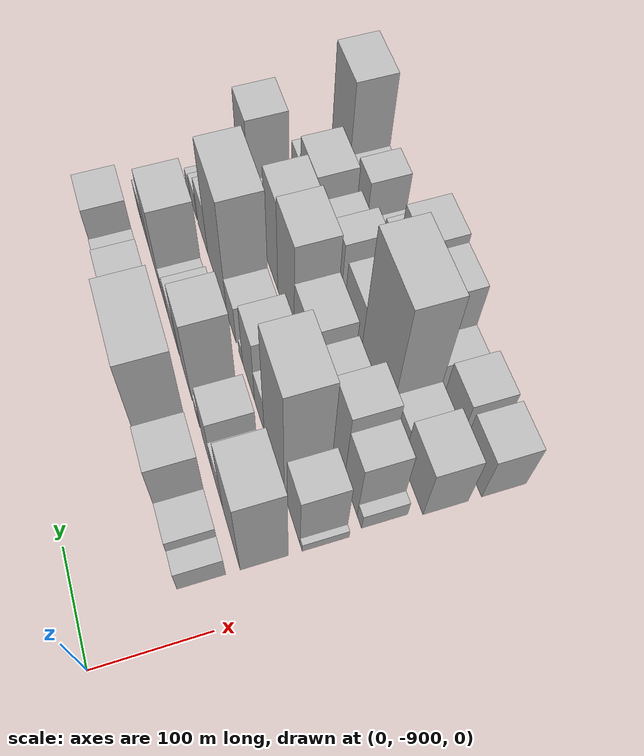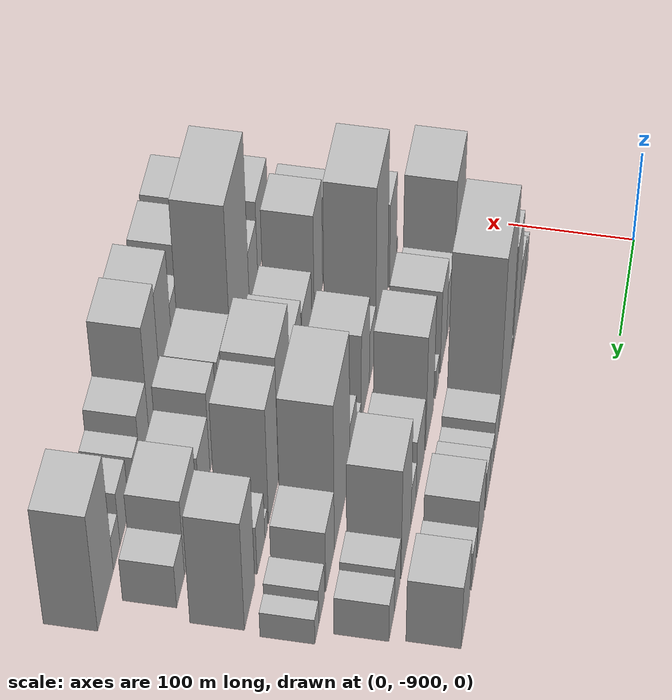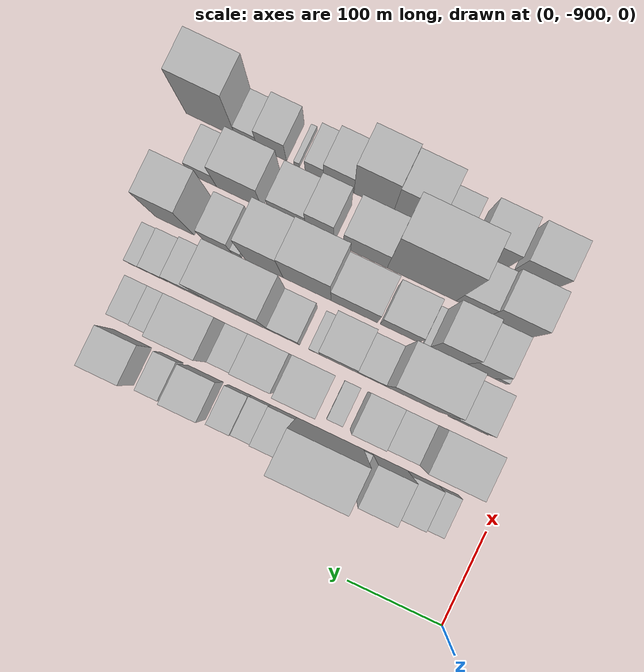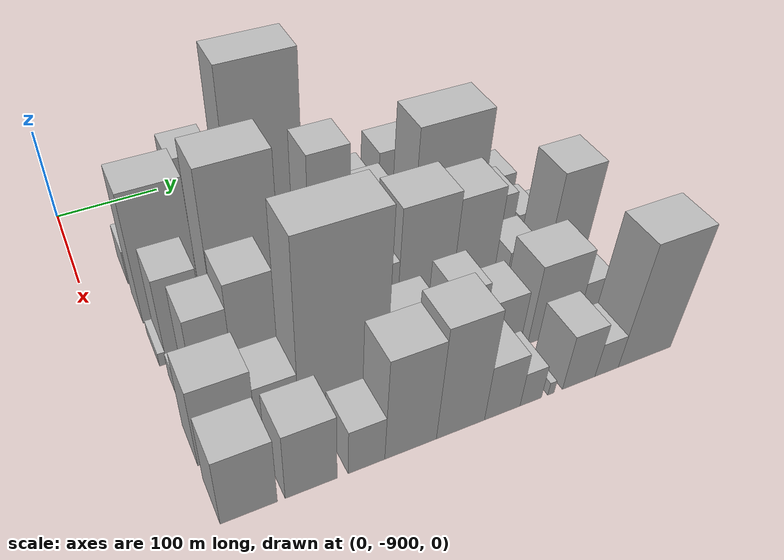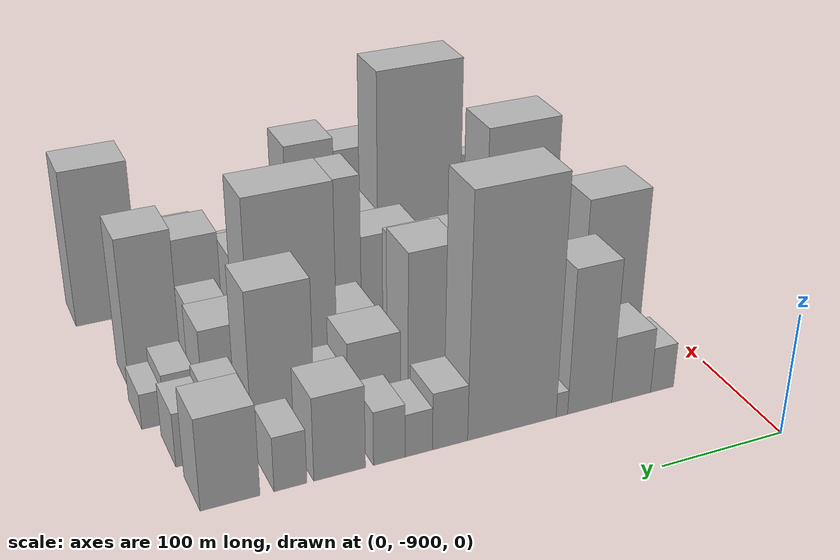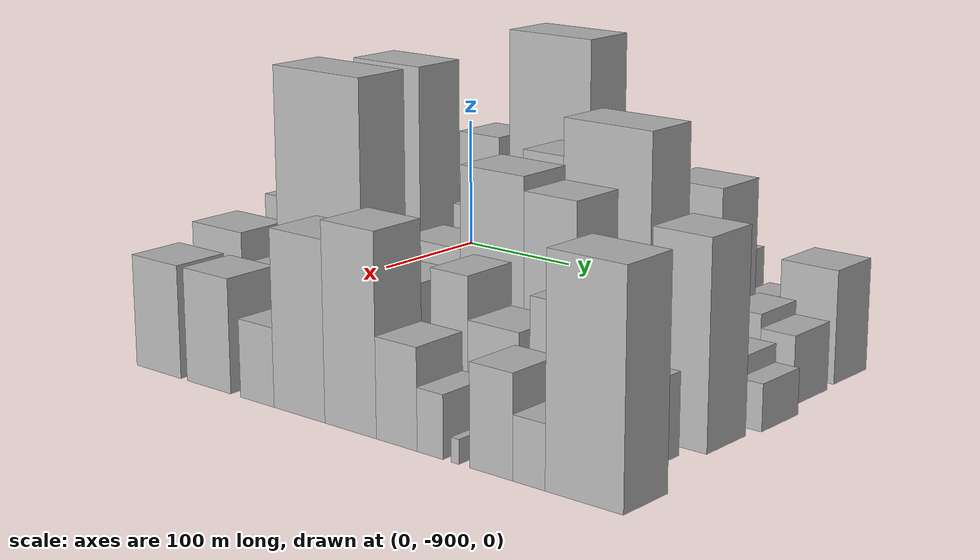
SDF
<sdf version="1.6">
 <world name="default">
  <model name="building_1">
   <static>1</static>
   <pose>100.0000 -849.9705 0 0.000000 0.000000 0.000000</pose>
   <link name="link">
    <pose>0 0 19.50 0 0 0</pose>
    <collision name="collision"><geometry><box><size>40.0000 20.0590 39.0000</size></box></geometry></collision>
    <visual name="visual">
     <cast_shadows>0</cast_shadows>
     <geometry><box><size>40.0000 20.0590 39.0000</size></box></geometry>
     <material>
      <script>
       <uri>model://HANNAS_wall/materials/scripts</uri>
       <uri>model://HANNAS_wall/materials/textures</uri>
       <name>vrc/HANNAS_wall</name>
      </script>
     </material>
    </visual>
   </link>
  </model>
  <model name="building_2">
   <static>1</static>
   <pose>100.0000 -823.1880 0 0.000000 0.000000 0.000000</pose>
   <link name="link">
    <pose>0 0 28.50 0 0 0</pose>
    <collision name="collision"><geometry><box><size>40.0000 33.5061 57.0000</size></box></geometry></collision>
    <visual name="visual">
     <cast_shadows>0</cast_shadows>
     <geometry><box><size>40.0000 33.5061 57.0000</size></box></geometry>
     <material>
      <script>
       <uri>model://HANNAS_wall/materials/scripts</uri>
       <uri>model://HANNAS_wall/materials/textures</uri>
       <name>vrc/HANNAS_wall</name>
      </script>
     </material>
    </visual>
   </link>
  </model>
  <model name="building_3">
   <static>1</static>
   <pose>100.0000 -787.8565 0 0.000000 0.000000 0.000000</pose>
   <link name="link">
    <pose>0 0 61.50 0 0 0</pose>
    <collision name="collision"><geometry><box><size>40.0000 37.1568 123.0000</size></box></geometry></collision>
    <visual name="visual">
     <cast_shadows>0</cast_shadows>
     <geometry><box><size>40.0000 37.1568 123.0000</size></box></geometry>
     <material>
      <script>
       <uri>model://HANNAS_wall/materials/scripts</uri>
       <uri>model://HANNAS_wall/materials/textures</uri>
       <name>vrc/HANNAS_wall</name>
      </script>
     </material>
    </visual>
   </link>
  </model>
  <model name="building_4">
   <static>1</static>
   <pose>100.0000 -764.4919 0 0.000000 0.000000 0.000000</pose>
   <link name="link">
    <pose>0 0 10.50 0 0 0</pose>
    <collision name="collision"><geometry><box><size>40.0000 9.5725 21.0000</size></box></geometry></collision>
    <visual name="visual">
     <cast_shadows>0</cast_shadows>
     <geometry><box><size>40.0000 9.5725 21.0000</size></box></geometry>
     <material>
      <script>
       <uri>model://HANNAS_wall/materials/scripts</uri>
       <uri>model://HANNAS_wall/materials/textures</uri>
       <name>vrc/HANNAS_wall</name>
      </script>
     </material>
    </visual>
   </link>
  </model>
  <model name="building_5">
   <static>1</static>
   <pose>100.0000 -723.9472 0 0.000000 0.000000 0.000000</pose>
   <link name="link">
    <pose>0 0 100.50 0 0 0</pose>
    <collision name="collision"><geometry><box><size>40.0000 71.5170 201.0000</size></box></geometry></collision>
    <visual name="visual">
     <cast_shadows>0</cast_shadows>
     <geometry><box><size>40.0000 71.5170 201.0000</size></box></geometry>
     <material>
      <script>
       <uri>model://HANNAS_wall/materials/scripts</uri>
       <uri>model://HANNAS_wall/materials/textures</uri>
       <name>vrc/HANNAS_wall</name>
      </script>
     </material>
    </visual>
   </link>
  </model>
  <model name="building_6">
   <static>1</static>
   <pose>100.0000 -674.4007 0 0.000000 0.000000 0.000000</pose>
   <link name="link">
    <pose>0 0 24.00 0 0 0</pose>
    <collision name="collision"><geometry><box><size>40.0000 27.5761 48.0000</size></box></geometry></collision>
    <visual name="visual">
     <cast_shadows>0</cast_shadows>
     <geometry><box><size>40.0000 27.5761 48.0000</size></box></geometry>
     <material>
      <script>
       <uri>model://HANNAS_wall/materials/scripts</uri>
       <uri>model://HANNAS_wall/materials/textures</uri>
       <name>vrc/HANNAS_wall</name>
      </script>
     </material>
    </visual>
   </link>
  </model>
  <model name="building_7">
   <static>1</static>
   <pose>100.0000 -650.1896 0 0.000000 0.000000 0.000000</pose>
   <link name="link">
    <pose>0 0 18.00 0 0 0</pose>
    <collision name="collision"><geometry><box><size>40.0000 20.8461 36.0000</size></box></geometry></collision>
    <visual name="visual">
     <cast_shadows>0</cast_shadows>
     <geometry><box><size>40.0000 20.8461 36.0000</size></box></geometry>
     <material>
      <script>
       <uri>model://HANNAS_wall/materials/scripts</uri>
       <uri>model://HANNAS_wall/materials/textures</uri>
       <name>vrc/HANNAS_wall</name>
      </script>
     </material>
    </visual>
   </link>
  </model>
  <model name="building_8">
   <static>1</static>
   <pose>100.0000 -627.7108 0 0.000000 0.000000 0.000000</pose>
   <link name="link">
    <pose>0 0 22.50 0 0 0</pose>
    <collision name="collision"><geometry><box><size>40.0000 24.1114 45.0000</size></box></geometry></collision>
    <visual name="visual">
     <cast_shadows>0</cast_shadows>
     <geometry><box><size>40.0000 24.1114 45.0000</size></box></geometry>
     <material>
      <script>
       <uri>model://HANNAS_wall/materials/scripts</uri>
       <uri>model://HANNAS_wall/materials/textures</uri>
       <name>vrc/HANNAS_wall</name>
      </script>
     </material>
    </visual>
   </link>
  </model>
  <model name="building_9">
   <static>1</static>
   <pose>100.0000 -590.5722 0 0.000000 0.000000 0.000000</pose>
   <link name="link">
    <pose>0 0 34.50 0 0 0</pose>
    <collision name="collision"><geometry><box><size>40.0000 38.1658 69.0000</size></box></geometry></collision>
    <visual name="visual">
     <cast_shadows>0</cast_shadows>
     <geometry><box><size>40.0000 38.1658 69.0000</size></box></geometry>
     <material>
      <script>
       <uri>model://HANNAS_wall/materials/scripts</uri>
       <uri>model://HANNAS_wall/materials/textures</uri>
       <name>vrc/HANNAS_wall</name>
      </script>
     </material>
    </visual>
   </link>
  </model>
  <model name="building_10">
   <static>1</static>
   <pose>100.0000 -554.6304 0 0.000000 0.000000 0.000000</pose>
   <link name="link">
    <pose>0 0 22.50 0 0 0</pose>
    <collision name="collision"><geometry><box><size>40.0000 23.7178 45.0000</size></box></geometry></collision>
    <visual name="visual">
     <cast_shadows>0</cast_shadows>
     <geometry><box><size>40.0000 23.7178 45.0000</size></box></geometry>
     <material>
      <script>
       <uri>model://HANNAS_wall/materials/scripts</uri>
       <uri>model://HANNAS_wall/materials/textures</uri>
       <name>vrc/HANNAS_wall</name>
      </script>
     </material>
    </visual>
   </link>
  </model>
  <model name="building_11">
   <static>1</static>
   <pose>100.0000 -511.8057 0 0.000000 0.000000 0.000000</pose>
   <link name="link">
    <pose>0 0 37.50 0 0 0</pose>
    <collision name="collision"><geometry><box><size>40.0000 41.9316 75.0000</size></box></geometry></collision>
    <visual name="visual">
     <cast_shadows>0</cast_shadows>
     <geometry><box><size>40.0000 41.9316 75.0000</size></box></geometry>
     <material>
      <script>
       <uri>model://HANNAS_wall/materials/scripts</uri>
       <uri>model://HANNAS_wall/materials/textures</uri>
       <name>vrc/HANNAS_wall</name>
      </script>
     </material>
    </visual>
   </link>
  </model>
  <model name="building_54">
   <static>1</static>
   <pose>152.0000 -833.8782 0 0.000000 0.000000 0.000000</pose>
   <link name="link">
    <pose>0 0 72.00 0 0 0</pose>
    <collision name="collision"><geometry><box><size>40.0000 52.2435 144.0000</size></box></geometry></collision>
    <visual name="visual">
     <cast_shadows>0</cast_shadows>
     <geometry><box><size>40.0000 52.2435 144.0000</size></box></geometry>
     <material>
      <script>
       <uri>model://HANNAS_wall/materials/scripts</uri>
       <uri>model://HANNAS_wall/materials/textures</uri>
       <name>vrc/HANNAS_wall</name>
      </script>
     </material>
    </visual>
   </link>
  </model>
  <model name="building_55">
   <static>1</static>
   <pose>152.0000 -790.3990 0 0.000000 0.000000 0.000000</pose>
   <link name="link">
    <pose>0 0 31.50 0 0 0</pose>
    <collision name="collision"><geometry><box><size>40.0000 34.7149 63.0000</size></box></geometry></collision>
    <visual name="visual">
     <cast_shadows>0</cast_shadows>
     <geometry><box><size>40.0000 34.7149 63.0000</size></box></geometry>
     <material>
      <script>
       <uri>model://HANNAS_wall/materials/scripts</uri>
       <uri>model://HANNAS_wall/materials/textures</uri>
       <name>vrc/HANNAS_wall</name>
      </script>
     </material>
    </visual>
   </link>
  </model>
  <model name="building_56">
   <static>1</static>
   <pose>152.0000 -756.1267 0 0.000000 0.000000 0.000000</pose>
   <link name="link">
    <pose>0 0 48.00 0 0 0</pose>
    <collision name="collision"><geometry><box><size>40.0000 33.8296 96.0000</size></box></geometry></collision>
    <visual name="visual">
     <cast_shadows>0</cast_shadows>
     <geometry><box><size>40.0000 33.8296 96.0000</size></box></geometry>
     <material>
      <script>
       <uri>model://HANNAS_wall/materials/scripts</uri>
       <uri>model://HANNAS_wall/materials/textures</uri>
       <name>vrc/HANNAS_wall</name>
      </script>
     </material>
    </visual>
   </link>
  </model>
  <model name="building_57">
   <static>1</static>
   <pose>152.0000 -722.8699 0 0.000000 0.000000 0.000000</pose>
   <link name="link">
    <pose>0 0 16.50 0 0 0</pose>
    <collision name="collision"><geometry><box><size>40.0000 16.6840 33.0000</size></box></geometry></collision>
    <visual name="visual">
     <cast_shadows>0</cast_shadows>
     <geometry><box><size>40.0000 16.6840 33.0000</size></box></geometry>
     <material>
      <script>
       <uri>model://HANNAS_wall/materials/scripts</uri>
       <uri>model://HANNAS_wall/materials/textures</uri>
       <name>vrc/HANNAS_wall</name>
      </script>
     </material>
    </visual>
   </link>
  </model>
  <model name="building_58">
   <static>1</static>
   <pose>152.0000 -684.3697 0 0.000000 0.000000 0.000000</pose>
   <link name="link">
    <pose>0 0 66.00 0 0 0</pose>
    <collision name="collision"><geometry><box><size>40.0000 40.3164 132.0000</size></box></geometry></collision>
    <visual name="visual">
     <cast_shadows>0</cast_shadows>
     <geometry><box><size>40.0000 40.3164 132.0000</size></box></geometry>
     <material>
      <script>
       <uri>model://HANNAS_wall/materials/scripts</uri>
       <uri>model://HANNAS_wall/materials/textures</uri>
       <name>vrc/HANNAS_wall</name>
      </script>
     </material>
    </visual>
   </link>
  </model>
  <model name="building_59">
   <static>1</static>
   <pose>152.0000 -637.6428 0 0.000000 0.000000 0.000000</pose>
   <link name="link">
    <pose>0 0 34.50 0 0 0</pose>
    <collision name="collision"><geometry><box><size>40.0000 41.1373 69.0000</size></box></geometry></collision>
    <visual name="visual">
     <cast_shadows>0</cast_shadows>
     <geometry><box><size>40.0000 41.1373 69.0000</size></box></geometry>
     <material>
      <script>
       <uri>model://HANNAS_wall/materials/scripts</uri>
       <uri>model://HANNAS_wall/materials/textures</uri>
       <name>vrc/HANNAS_wall</name>
      </script>
     </material>
    </visual>
   </link>
  </model>
  <model name="building_60">
   <static>1</static>
   <pose>152.0000 -604.3007 0 0.000000 0.000000 0.000000</pose>
   <link name="link">
    <pose>0 0 22.50 0 0 0</pose>
    <collision name="collision"><geometry><box><size>40.0000 25.5469 45.0000</size></box></geometry></collision>
    <visual name="visual">
     <cast_shadows>0</cast_shadows>
     <geometry><box><size>40.0000 25.5469 45.0000</size></box></geometry>
     <material>
      <script>
       <uri>model://HANNAS_wall/materials/scripts</uri>
       <uri>model://HANNAS_wall/materials/textures</uri>
       <name>vrc/HANNAS_wall</name>
      </script>
     </material>
    </visual>
   </link>
  </model>
  <model name="building_61">
   <static>1</static>
   <pose>152.0000 -567.8832 0 0.000000 0.000000 0.000000</pose>
   <link name="link">
    <pose>0 0 64.50 0 0 0</pose>
    <collision name="collision"><geometry><box><size>40.0000 47.2881 129.0000</size></box></geometry></collision>
    <visual name="visual">
     <cast_shadows>0</cast_shadows>
     <geometry><box><size>40.0000 47.2881 129.0000</size></box></geometry>
     <material>
      <script>
       <uri>model://HANNAS_wall/materials/scripts</uri>
       <uri>model://HANNAS_wall/materials/textures</uri>
       <name>vrc/HANNAS_wall</name>
      </script>
     </material>
    </visual>
   </link>
  </model>
  <model name="building_62">
   <static>1</static>
   <pose>152.0000 -527.3735 0 0.000000 0.000000 0.000000</pose>
   <link name="link">
    <pose>0 0 27.00 0 0 0</pose>
    <collision name="collision"><geometry><box><size>40.0000 27.7313 54.0000</size></box></geometry></collision>
    <visual name="visual">
     <cast_shadows>0</cast_shadows>
     <geometry><box><size>40.0000 27.7313 54.0000</size></box></geometry>
     <material>
      <script>
       <uri>model://HANNAS_wall/materials/scripts</uri>
       <uri>model://HANNAS_wall/materials/textures</uri>
       <name>vrc/HANNAS_wall</name>
      </script>
     </material>
    </visual>
   </link>
  </model>
  <model name="building_63">
   <static>1</static>
   <pose>152.0000 -501.0121 0 0.000000 0.000000 0.000000</pose>
   <link name="link">
    <pose>0 0 22.50 0 0 0</pose>
    <collision name="collision"><geometry><box><size>40.0000 24.9915 45.0000</size></box></geometry></collision>
    <visual name="visual">
     <cast_shadows>0</cast_shadows>
     <geometry><box><size>40.0000 24.9915 45.0000</size></box></geometry>
     <material>
      <script>
       <uri>model://HANNAS_wall/materials/scripts</uri>
       <uri>model://HANNAS_wall/materials/textures</uri>
       <name>vrc/HANNAS_wall</name>
      </script>
     </material>
    </visual>
   </link>
  </model>
  <model name="building_101">
   <static>1</static>
   <pose>204.0000 -856.9230 0 0.000000 0.000000 0.000000</pose>
   <link name="link">
    <pose>0 0 7.50 0 0 0</pose>
    <collision name="collision"><geometry><box><size>40.0000 6.1540 15.0000</size></box></geometry></collision>
    <visual name="visual">
     <cast_shadows>0</cast_shadows>
     <geometry><box><size>40.0000 6.1540 15.0000</size></box></geometry>
     <material>
      <script>
       <uri>model://HANNAS_wall/materials/scripts</uri>
       <uri>model://HANNAS_wall/materials/textures</uri>
       <name>vrc/HANNAS_wall</name>
      </script>
     </material>
    </visual>
   </link>
  </model>
  <model name="building_102">
   <static>1</static>
   <pose>204.0000 -836.4026 0 0.000000 0.000000 0.000000</pose>
   <link name="link">
    <pose>0 0 48.00 0 0 0</pose>
    <collision name="collision"><geometry><box><size>40.0000 34.8868 96.0000</size></box></geometry></collision>
    <visual name="visual">
     <cast_shadows>0</cast_shadows>
     <geometry><box><size>40.0000 34.8868 96.0000</size></box></geometry>
     <material>
      <script>
       <uri>model://HANNAS_wall/materials/scripts</uri>
       <uri>model://HANNAS_wall/materials/textures</uri>
       <name>vrc/HANNAS_wall</name>
      </script>
     </material>
    </visual>
   </link>
  </model>
  <model name="building_103">
   <static>1</static>
   <pose>204.0000 -780.2227 0 0.000000 0.000000 0.000000</pose>
   <link name="link">
    <pose>0 0 94.50 0 0 0</pose>
    <collision name="collision"><geometry><box><size>40.0000 59.4730 189.0000</size></box></geometry></collision>
    <visual name="visual">
     <cast_shadows>0</cast_shadows>
     <geometry><box><size>40.0000 59.4730 189.0000</size></box></geometry>
     <material>
      <script>
       <uri>model://HANNAS_wall/materials/scripts</uri>
       <uri>model://HANNAS_wall/materials/textures</uri>
       <name>vrc/HANNAS_wall</name>
      </script>
     </material>
    </visual>
   </link>
  </model>
  <model name="building_104">
   <static>1</static>
   <pose>204.0000 -735.6820 0 0.000000 0.000000 0.000000</pose>
   <link name="link">
    <pose>0 0 28.50 0 0 0</pose>
    <collision name="collision"><geometry><box><size>40.0000 29.6084 57.0000</size></box></geometry></collision>
    <visual name="visual">
     <cast_shadows>0</cast_shadows>
     <geometry><box><size>40.0000 29.6084 57.0000</size></box></geometry>
     <material>
      <script>
       <uri>model://HANNAS_wall/materials/scripts</uri>
       <uri>model://HANNAS_wall/materials/textures</uri>
       <name>vrc/HANNAS_wall</name>
      </script>
     </material>
    </visual>
   </link>
  </model>
  <model name="building_105">
   <static>1</static>
   <pose>204.0000 -701.6010 0 0.000000 0.000000 0.000000</pose>
   <link name="link">
    <pose>0 0 51.00 0 0 0</pose>
    <collision name="collision"><geometry><box><size>40.0000 38.5536 102.0000</size></box></geometry></collision>
    <visual name="visual">
     <cast_shadows>0</cast_shadows>
     <geometry><box><size>40.0000 38.5536 102.0000</size></box></geometry>
     <material>
      <script>
       <uri>model://HANNAS_wall/materials/scripts</uri>
       <uri>model://HANNAS_wall/materials/textures</uri>
       <name>vrc/HANNAS_wall</name>
      </script>
     </material>
    </visual>
   </link>
  </model>
  <model name="building_106">
   <static>1</static>
   <pose>204.0000 -676.3891 0 0.000000 0.000000 0.000000</pose>
   <link name="link">
    <pose>0 0 12.00 0 0 0</pose>
    <collision name="collision"><geometry><box><size>40.0000 11.8701 24.0000</size></box></geometry></collision>
    <visual name="visual">
     <cast_shadows>0</cast_shadows>
     <geometry><box><size>40.0000 11.8701 24.0000</size></box></geometry>
     <material>
      <script>
       <uri>model://HANNAS_wall/materials/scripts</uri>
       <uri>model://HANNAS_wall/materials/textures</uri>
       <name>vrc/HANNAS_wall</name>
      </script>
     </material>
    </visual>
   </link>
  </model>
  <model name="building_107">
   <static>1</static>
   <pose>204.0000 -644.6385 0 0.000000 0.000000 0.000000</pose>
   <link name="link">
    <pose>0 0 30.00 0 0 0</pose>
    <collision name="collision"><geometry><box><size>40.0000 31.6311 60.0000</size></box></geometry></collision>
    <visual name="visual">
     <cast_shadows>0</cast_shadows>
     <geometry><box><size>40.0000 31.6311 60.0000</size></box></geometry>
     <material>
      <script>
       <uri>model://HANNAS_wall/materials/scripts</uri>
       <uri>model://HANNAS_wall/materials/textures</uri>
       <name>vrc/HANNAS_wall</name>
      </script>
     </material>
    </visual>
   </link>
  </model>
  <model name="building_108">
   <static>1</static>
   <pose>204.0000 -594.8870 0 0.000000 0.000000 0.000000</pose>
   <link name="link">
    <pose>0 0 85.50 0 0 0</pose>
    <collision name="collision"><geometry><box><size>40.0000 67.8719 171.0000</size></box></geometry></collision>
    <visual name="visual">
     <cast_shadows>0</cast_shadows>
     <geometry><box><size>40.0000 67.8719 171.0000</size></box></geometry>
     <material>
      <script>
       <uri>model://HANNAS_wall/materials/scripts</uri>
       <uri>model://HANNAS_wall/materials/textures</uri>
       <name>vrc/HANNAS_wall</name>
      </script>
     </material>
    </visual>
   </link>
  </model>
  <model name="building_109">
   <static>1</static>
   <pose>204.0000 -542.3410 0 0.000000 0.000000 0.000000</pose>
   <link name="link">
    <pose>0 0 36.00 0 0 0</pose>
    <collision name="collision"><geometry><box><size>40.0000 37.2202 72.0000</size></box></geometry></collision>
    <visual name="visual">
     <cast_shadows>0</cast_shadows>
     <geometry><box><size>40.0000 37.2202 72.0000</size></box></geometry>
     <material>
      <script>
       <uri>model://HANNAS_wall/materials/scripts</uri>
       <uri>model://HANNAS_wall/materials/textures</uri>
       <name>vrc/HANNAS_wall</name>
      </script>
     </material>
    </visual>
   </link>
  </model>
  <model name="building_110">
   <static>1</static>
   <pose>204.0000 -506.6644 0 0.000000 0.000000 0.000000</pose>
   <link name="link">
    <pose>0 0 21.00 0 0 0</pose>
    <collision name="collision"><geometry><box><size>40.0000 24.1329 42.0000</size></box></geometry></collision>
    <visual name="visual">
     <cast_shadows>0</cast_shadows>
     <geometry><box><size>40.0000 24.1329 42.0000</size></box></geometry>
     <material>
      <script>
       <uri>model://HANNAS_wall/materials/scripts</uri>
       <uri>model://HANNAS_wall/materials/textures</uri>
       <name>vrc/HANNAS_wall</name>
      </script>
     </material>
    </visual>
   </link>
  </model>
  <model name="building_111">
   <static>1</static>
   <pose>204.0000 -486.0702 0 0.000000 0.000000 0.000000</pose>
   <link name="link">
    <pose>0 0 15.00 0 0 0</pose>
    <collision name="collision"><geometry><box><size>40.0000 17.0557 30.0000</size></box></geometry></collision>
    <visual name="visual">
     <cast_shadows>0</cast_shadows>
     <geometry><box><size>40.0000 17.0557 30.0000</size></box></geometry>
     <material>
      <script>
       <uri>model://HANNAS_wall/materials/scripts</uri>
       <uri>model://HANNAS_wall/materials/textures</uri>
       <name>vrc/HANNAS_wall</name>
      </script>
     </material>
    </visual>
   </link>
  </model>
  <model name="building_154">
   <static>1</static>
   <pose>256.0000 -850.3918 0 0.000000 0.000000 0.000000</pose>
   <link name="link">
    <pose>0 0 13.50 0 0 0</pose>
    <collision name="collision"><geometry><box><size>40.0000 11.2164 27.0000</size></box></geometry></collision>
    <visual name="visual">
     <cast_shadows>0</cast_shadows>
     <geometry><box><size>40.0000 11.2164 27.0000</size></box></geometry>
     <material>
      <script>
       <uri>model://HANNAS_wall/materials/scripts</uri>
       <uri>model://HANNAS_wall/materials/textures</uri>
       <name>vrc/HANNAS_wall</name>
      </script>
     </material>
    </visual>
   </link>
  </model>
  <model name="building_155">
   <static>1</static>
   <pose>256.0000 -828.4292 0 0.000000 0.000000 0.000000</pose>
   <link name="link">
    <pose>0 0 49.50 0 0 0</pose>
    <collision name="collision"><geometry><box><size>40.0000 32.7088 99.0000</size></box></geometry></collision>
    <visual name="visual">
     <cast_shadows>0</cast_shadows>
     <geometry><box><size>40.0000 32.7088 99.0000</size></box></geometry>
     <material>
      <script>
       <uri>model://HANNAS_wall/materials/scripts</uri>
       <uri>model://HANNAS_wall/materials/textures</uri>
       <name>vrc/HANNAS_wall</name>
      </script>
     </material>
    </visual>
   </link>
  </model>
  <model name="building_156">
   <static>1</static>
   <pose>256.0000 -793.1536 0 0.000000 0.000000 0.000000</pose>
   <link name="link">
    <pose>0 0 61.50 0 0 0</pose>
    <collision name="collision"><geometry><box><size>40.0000 37.8426 123.0000</size></box></geometry></collision>
    <visual name="visual">
     <cast_shadows>0</cast_shadows>
     <geometry><box><size>40.0000 37.8426 123.0000</size></box></geometry>
     <material>
      <script>
       <uri>model://HANNAS_wall/materials/scripts</uri>
       <uri>model://HANNAS_wall/materials/textures</uri>
       <name>vrc/HANNAS_wall</name>
      </script>
     </material>
    </visual>
   </link>
  </model>
  <model name="building_157">
   <static>1</static>
   <pose>256.0000 -770.7278 0 0.000000 0.000000 0.000000</pose>
   <link name="link">
    <pose>0 0 7.50 0 0 0</pose>
    <collision name="collision"><geometry><box><size>40.0000 7.0089 15.0000</size></box></geometry></collision>
    <visual name="visual">
     <cast_shadows>0</cast_shadows>
     <geometry><box><size>40.0000 7.0089 15.0000</size></box></geometry>
     <material>
      <script>
       <uri>model://HANNAS_wall/materials/scripts</uri>
       <uri>model://HANNAS_wall/materials/textures</uri>
       <name>vrc/HANNAS_wall</name>
      </script>
     </material>
    </visual>
   </link>
  </model>
  <model name="building_158">
   <static>1</static>
   <pose>256.0000 -742.5458 0 0.000000 0.000000 0.000000</pose>
   <link name="link">
    <pose>0 0 36.00 0 0 0</pose>
    <collision name="collision"><geometry><box><size>40.0000 41.3553 72.0000</size></box></geometry></collision>
    <visual name="visual">
     <cast_shadows>0</cast_shadows>
     <geometry><box><size>40.0000 41.3553 72.0000</size></box></geometry>
     <material>
      <script>
       <uri>model://HANNAS_wall/materials/scripts</uri>
       <uri>model://HANNAS_wall/materials/textures</uri>
       <name>vrc/HANNAS_wall</name>
      </script>
     </material>
    </visual>
   </link>
  </model>
  <model name="building_159">
   <static>1</static>
   <pose>256.0000 -693.9893 0 0.000000 0.000000 0.000000</pose>
   <link name="link">
    <pose>0 0 45.00 0 0 0</pose>
    <collision name="collision"><geometry><box><size>40.0000 49.7577 90.0000</size></box></geometry></collision>
    <visual name="visual">
     <cast_shadows>0</cast_shadows>
     <geometry><box><size>40.0000 49.7577 90.0000</size></box></geometry>
     <material>
      <script>
       <uri>model://HANNAS_wall/materials/scripts</uri>
       <uri>model://HANNAS_wall/materials/textures</uri>
       <name>vrc/HANNAS_wall</name>
      </script>
     </material>
    </visual>
   </link>
  </model>
  <model name="building_160">
   <static>1</static>
   <pose>256.0000 -643.5209 0 0.000000 0.000000 0.000000</pose>
   <link name="link">
    <pose>0 0 72.00 0 0 0</pose>
    <collision name="collision"><geometry><box><size>40.0000 51.1791 144.0000</size></box></geometry></collision>
    <visual name="visual">
     <cast_shadows>0</cast_shadows>
     <geometry><box><size>40.0000 51.1791 144.0000</size></box></geometry>
     <material>
      <script>
       <uri>model://HANNAS_wall/materials/scripts</uri>
       <uri>model://HANNAS_wall/materials/textures</uri>
       <name>vrc/HANNAS_wall</name>
      </script>
     </material>
    </visual>
   </link>
  </model>
  <model name="building_161">
   <static>1</static>
   <pose>256.0000 -597.5958 0 0.000000 0.000000 0.000000</pose>
   <link name="link">
    <pose>0 0 67.50 0 0 0</pose>
    <collision name="collision"><geometry><box><size>40.0000 40.6712 135.0000</size></box></geometry></collision>
    <visual name="visual">
     <cast_shadows>0</cast_shadows>
     <geometry><box><size>40.0000 40.6712 135.0000</size></box></geometry>
     <material>
      <script>
       <uri>model://HANNAS_wall/materials/scripts</uri>
       <uri>model://HANNAS_wall/materials/textures</uri>
       <name>vrc/HANNAS_wall</name>
      </script>
     </material>
    </visual>
   </link>
  </model>
  <model name="building_162">
   <static>1</static>
   <pose>256.0000 -567.8413 0 0.000000 0.000000 0.000000</pose>
   <link name="link">
    <pose>0 0 12.00 0 0 0</pose>
    <collision name="collision"><geometry><box><size>40.0000 10.8379 24.0000</size></box></geometry></collision>
    <visual name="visual">
     <cast_shadows>0</cast_shadows>
     <geometry><box><size>40.0000 10.8379 24.0000</size></box></geometry>
     <material>
      <script>
       <uri>model://HANNAS_wall/materials/scripts</uri>
       <uri>model://HANNAS_wall/materials/textures</uri>
       <name>vrc/HANNAS_wall</name>
      </script>
     </material>
    </visual>
   </link>
  </model>
  <model name="building_163">
   <static>1</static>
   <pose>256.0000 -546.7615 0 0.000000 0.000000 0.000000</pose>
   <link name="link">
    <pose>0 0 28.50 0 0 0</pose>
    <collision name="collision"><geometry><box><size>40.0000 31.3217 57.0000</size></box></geometry></collision>
    <visual name="visual">
     <cast_shadows>0</cast_shadows>
     <geometry><box><size>40.0000 31.3217 57.0000</size></box></geometry>
     <material>
      <script>
       <uri>model://HANNAS_wall/materials/scripts</uri>
       <uri>model://HANNAS_wall/materials/textures</uri>
       <name>vrc/HANNAS_wall</name>
      </script>
     </material>
    </visual>
   </link>
  </model>
  <model name="building_164">
   <static>1</static>
   <pose>256.0000 -501.5882 0 0.000000 0.000000 0.000000</pose>
   <link name="link">
    <pose>0 0 64.50 0 0 0</pose>
    <collision name="collision"><geometry><box><size>40.0000 41.0250 129.0000</size></box></geometry></collision>
    <visual name="visual">
     <cast_shadows>0</cast_shadows>
     <geometry><box><size>40.0000 41.0250 129.0000</size></box></geometry>
     <material>
      <script>
       <uri>model://HANNAS_wall/materials/scripts</uri>
       <uri>model://HANNAS_wall/materials/textures</uri>
       <name>vrc/HANNAS_wall</name>
      </script>
     </material>
    </visual>
   </link>
  </model>
  <model name="building_206">
   <static>1</static>
   <pose>308.0000 -836.4683 0 0.000000 0.000000 0.000000</pose>
   <link name="link">
    <pose>0 0 43.50 0 0 0</pose>
    <collision name="collision"><geometry><box><size>40.0000 47.0634 87.0000</size></box></geometry></collision>
    <visual name="visual">
     <cast_shadows>0</cast_shadows>
     <geometry><box><size>40.0000 47.0634 87.0000</size></box></geometry>
     <material>
      <script>
       <uri>model://HANNAS_wall/materials/scripts</uri>
       <uri>model://HANNAS_wall/materials/textures</uri>
       <name>vrc/HANNAS_wall</name>
      </script>
     </material>
    </visual>
   </link>
  </model>
  <model name="building_207">
   <static>1</static>
   <pose>308.0000 -795.7116 0 0.000000 0.000000 0.000000</pose>
   <link name="link">
    <pose>0 0 33.00 0 0 0</pose>
    <collision name="collision"><geometry><box><size>40.0000 34.4500 66.0000</size></box></geometry></collision>
    <visual name="visual">
     <cast_shadows>0</cast_shadows>
     <geometry><box><size>40.0000 34.4500 66.0000</size></box></geometry>
     <material>
      <script>
       <uri>model://HANNAS_wall/materials/scripts</uri>
       <uri>model://HANNAS_wall/materials/textures</uri>
       <name>vrc/HANNAS_wall</name>
      </script>
     </material>
    </visual>
   </link>
  </model>
  <model name="building_208">
   <static>1</static>
   <pose>308.0000 -741.4900 0 0.000000 0.000000 0.000000</pose>
   <link name="link">
    <pose>0 0 100.50 0 0 0</pose>
    <collision name="collision"><geometry><box><size>40.0000 73.9932 201.0000</size></box></geometry></collision>
    <visual name="visual">
     <cast_shadows>0</cast_shadows>
     <geometry><box><size>40.0000 73.9932 201.0000</size></box></geometry>
     <material>
      <script>
       <uri>model://HANNAS_wall/materials/scripts</uri>
       <uri>model://HANNAS_wall/materials/textures</uri>
       <name>vrc/HANNAS_wall</name>
      </script>
     </material>
    </visual>
   </link>
  </model>
  <model name="building_209">
   <static>1</static>
   <pose>308.0000 -680.8880 0 0.000000 0.000000 0.000000</pose>
   <link name="link">
    <pose>0 0 40.50 0 0 0</pose>
    <collision name="collision"><geometry><box><size>40.0000 47.2108 81.0000</size></box></geometry></collision>
    <visual name="visual">
     <cast_shadows>0</cast_shadows>
     <geometry><box><size>40.0000 47.2108 81.0000</size></box></geometry>
     <material>
      <script>
       <uri>model://HANNAS_wall/materials/scripts</uri>
       <uri>model://HANNAS_wall/materials/textures</uri>
       <name>vrc/HANNAS_wall</name>
      </script>
     </material>
    </visual>
   </link>
  </model>
  <model name="building_210">
   <static>1</static>
   <pose>308.0000 -632.5297 0 0.000000 0.000000 0.000000</pose>
   <link name="link">
    <pose>0 0 46.50 0 0 0</pose>
    <collision name="collision"><geometry><box><size>40.0000 29.5058 93.0000</size></box></geometry></collision>
    <visual name="visual">
     <cast_shadows>0</cast_shadows>
     <geometry><box><size>40.0000 29.5058 93.0000</size></box></geometry>
     <material>
      <script>
       <uri>model://HANNAS_wall/materials/scripts</uri>
       <uri>model://HANNAS_wall/materials/textures</uri>
       <name>vrc/HANNAS_wall</name>
      </script>
     </material>
    </visual>
   </link>
  </model>
  <model name="building_211">
   <static>1</static>
   <pose>308.0000 -598.1121 0 0.000000 0.000000 0.000000</pose>
   <link name="link">
    <pose>0 0 33.00 0 0 0</pose>
    <collision name="collision"><geometry><box><size>40.0000 39.3293 66.0000</size></box></geometry></collision>
    <visual name="visual">
     <cast_shadows>0</cast_shadows>
     <geometry><box><size>40.0000 39.3293 66.0000</size></box></geometry>
     <material>
      <script>
       <uri>model://HANNAS_wall/materials/scripts</uri>
       <uri>model://HANNAS_wall/materials/textures</uri>
       <name>vrc/HANNAS_wall</name>
      </script>
     </material>
    </visual>
   </link>
  </model>
  <model name="building_212">
   <static>1</static>
   <pose>308.0000 -545.7716 0 0.000000 0.000000 0.000000</pose>
   <link name="link">
    <pose>0 0 45.00 0 0 0</pose>
    <collision name="collision"><geometry><box><size>40.0000 49.3518 90.0000</size></box></geometry></collision>
    <visual name="visual">
     <cast_shadows>0</cast_shadows>
     <geometry><box><size>40.0000 49.3518 90.0000</size></box></geometry>
     <material>
      <script>
       <uri>model://HANNAS_wall/materials/scripts</uri>
       <uri>model://HANNAS_wall/materials/textures</uri>
       <name>vrc/HANNAS_wall</name>
      </script>
     </material>
    </visual>
   </link>
  </model>
  <model name="building_213">
   <static>1</static>
   <pose>308.0000 -506.6806 0 0.000000 0.000000 0.000000</pose>
   <link name="link">
    <pose>0 0 25.50 0 0 0</pose>
    <collision name="collision"><geometry><box><size>40.0000 28.8302 51.0000</size></box></geometry></collision>
    <visual name="visual">
     <cast_shadows>0</cast_shadows>
     <geometry><box><size>40.0000 28.8302 51.0000</size></box></geometry>
     <material>
      <script>
       <uri>model://HANNAS_wall/materials/scripts</uri>
       <uri>model://HANNAS_wall/materials/textures</uri>
       <name>vrc/HANNAS_wall</name>
      </script>
     </material>
    </visual>
   </link>
  </model>
  <model name="building_254">
   <static>1</static>
   <pose>360.0000 -838.3730 0 0.000000 0.000000 0.000000</pose>
   <link name="link">
    <pose>0 0 37.50 0 0 0</pose>
    <collision name="collision"><geometry><box><size>40.0000 43.2540 75.0000</size></box></geometry></collision>
    <visual name="visual">
     <cast_shadows>0</cast_shadows>
     <geometry><box><size>40.0000 43.2540 75.0000</size></box></geometry>
     <material>
      <script>
       <uri>model://HANNAS_wall/materials/scripts</uri>
       <uri>model://HANNAS_wall/materials/textures</uri>
       <name>vrc/HANNAS_wall</name>
      </script>
     </material>
    </visual>
   </link>
  </model>
  <model name="building_255">
   <static>1</static>
   <pose>360.0000 -790.2494 0 0.000000 0.000000 0.000000</pose>
   <link name="link">
    <pose>0 0 37.50 0 0 0</pose>
    <collision name="collision"><geometry><box><size>40.0000 40.9934 75.0000</size></box></geometry></collision>
    <visual name="visual">
     <cast_shadows>0</cast_shadows>
     <geometry><box><size>40.0000 40.9934 75.0000</size></box></geometry>
     <material>
      <script>
       <uri>model://HANNAS_wall/materials/scripts</uri>
       <uri>model://HANNAS_wall/materials/textures</uri>
       <name>vrc/HANNAS_wall</name>
      </script>
     </material>
    </visual>
   </link>
  </model>
  <model name="building_256">
   <static>1</static>
   <pose>360.0000 -745.6965 0 0.000000 0.000000 0.000000</pose>
   <link name="link">
    <pose>0 0 25.50 0 0 0</pose>
    <collision name="collision"><geometry><box><size>40.0000 30.1123 51.0000</size></box></geometry></collision>
    <visual name="visual">
     <cast_shadows>0</cast_shadows>
     <geometry><box><size>40.0000 30.1123 51.0000</size></box></geometry>
     <material>
      <script>
       <uri>model://HANNAS_wall/materials/scripts</uri>
       <uri>model://HANNAS_wall/materials/textures</uri>
       <name>vrc/HANNAS_wall</name>
      </script>
     </material>
    </visual>
   </link>
  </model>
  <model name="building_257">
   <static>1</static>
   <pose>360.0000 -708.6534 0 0.000000 0.000000 0.000000</pose>
   <link name="link">
    <pose>0 0 57.00 0 0 0</pose>
    <collision name="collision"><geometry><box><size>40.0000 43.9739 114.0000</size></box></geometry></collision>
    <visual name="visual">
     <cast_shadows>0</cast_shadows>
     <geometry><box><size>40.0000 43.9739 114.0000</size></box></geometry>
     <material>
      <script>
       <uri>model://HANNAS_wall/materials/scripts</uri>
       <uri>model://HANNAS_wall/materials/textures</uri>
       <name>vrc/HANNAS_wall</name>
      </script>
     </material>
    </visual>
   </link>
  </model>
  <model name="building_258">
   <static>1</static>
   <pose>360.0000 -665.3650 0 0.000000 0.000000 0.000000</pose>
   <link name="link">
    <pose>0 0 63.00 0 0 0</pose>
    <collision name="collision"><geometry><box><size>40.0000 42.6030 126.0000</size></box></geometry></collision>
    <visual name="visual">
     <cast_shadows>0</cast_shadows>
     <geometry><box><size>40.0000 42.6030 126.0000</size></box></geometry>
     <material>
      <script>
       <uri>model://HANNAS_wall/materials/scripts</uri>
       <uri>model://HANNAS_wall/materials/textures</uri>
       <name>vrc/HANNAS_wall</name>
      </script>
     </material>
    </visual>
   </link>
  </model>
  <model name="building_259">
   <static>1</static>
   <pose>360.0000 -627.8321 0 0.000000 0.000000 0.000000</pose>
   <link name="link">
    <pose>0 0 31.50 0 0 0</pose>
    <collision name="collision"><geometry><box><size>40.0000 32.4627 63.0000</size></box></geometry></collision>
    <visual name="visual">
     <cast_shadows>0</cast_shadows>
     <geometry><box><size>40.0000 32.4627 63.0000</size></box></geometry>
     <material>
      <script>
       <uri>model://HANNAS_wall/materials/scripts</uri>
       <uri>model://HANNAS_wall/materials/textures</uri>
       <name>vrc/HANNAS_wall</name>
      </script>
     </material>
    </visual>
   </link>
  </model>
  <model name="building_260">
   <static>1</static>
   <pose>360.0000 -601.5326 0 0.000000 0.000000 0.000000</pose>
   <link name="link">
    <pose>0 0 19.50 0 0 0</pose>
    <collision name="collision"><geometry><box><size>40.0000 20.1364 39.0000</size></box></geometry></collision>
    <visual name="visual">
     <cast_shadows>0</cast_shadows>
     <geometry><box><size>40.0000 20.1364 39.0000</size></box></geometry>
     <material>
      <script>
       <uri>model://HANNAS_wall/materials/scripts</uri>
       <uri>model://HANNAS_wall/materials/textures</uri>
       <name>vrc/HANNAS_wall</name>
      </script>
     </material>
    </visual>
   </link>
  </model>
  <model name="building_261">
   <static>1</static>
   <pose>360.0000 -582.4530 0 0.000000 0.000000 0.000000</pose>
   <link name="link">
    <pose>0 0 7.50 0 0 0</pose>
    <collision name="collision"><geometry><box><size>40.0000 6.0228 15.0000</size></box></geometry></collision>
    <visual name="visual">
     <cast_shadows>0</cast_shadows>
     <geometry><box><size>40.0000 6.0228 15.0000</size></box></geometry>
     <material>
      <script>
       <uri>model://HANNAS_wall/materials/scripts</uri>
       <uri>model://HANNAS_wall/materials/textures</uri>
       <name>vrc/HANNAS_wall</name>
      </script>
     </material>
    </visual>
   </link>
  </model>
  <model name="building_262">
   <static>1</static>
   <pose>360.0000 -555.6363 0 0.000000 0.000000 0.000000</pose>
   <link name="link">
    <pose>0 0 31.50 0 0 0</pose>
    <collision name="collision"><geometry><box><size>40.0000 31.6107 63.0000</size></box></geometry></collision>
    <visual name="visual">
     <cast_shadows>0</cast_shadows>
     <geometry><box><size>40.0000 31.6107 63.0000</size></box></geometry>
     <material>
      <script>
       <uri>model://HANNAS_wall/materials/scripts</uri>
       <uri>model://HANNAS_wall/materials/textures</uri>
       <name>vrc/HANNAS_wall</name>
      </script>
     </material>
    </visual>
   </link>
  </model>
  <model name="building_263">
   <static>1</static>
   <pose>360.0000 -528.2255 0 0.000000 0.000000 0.000000</pose>
   <link name="link">
    <pose>0 0 19.50 0 0 0</pose>
    <collision name="collision"><geometry><box><size>40.0000 23.2109 39.0000</size></box></geometry></collision>
    <visual name="visual">
     <cast_shadows>0</cast_shadows>
     <geometry><box><size>40.0000 23.2109 39.0000</size></box></geometry>
     <material>
      <script>
       <uri>model://HANNAS_wall/materials/scripts</uri>
       <uri>model://HANNAS_wall/materials/textures</uri>
       <name>vrc/HANNAS_wall</name>
      </script>
     </material>
    </visual>
   </link>
  </model>
  <model name="building_264">
   <static>1</static>
   <pose>360.0000 -489.8278 0 0.000000 0.000000 0.000000</pose>
   <link name="link">
    <pose>0 0 69.00 0 0 0</pose>
    <collision name="collision"><geometry><box><size>40.0000 53.5845 138.0000</size></box></geometry></collision>
    <visual name="visual">
     <cast_shadows>0</cast_shadows>
     <geometry><box><size>40.0000 53.5845 138.0000</size></box></geometry>
     <material>
      <script>
       <uri>model://HANNAS_wall/materials/scripts</uri>
       <uri>model://HANNAS_wall/materials/textures</uri>
       <name>vrc/HANNAS_wall</name>
      </script>
     </material>
    </visual>
   </link>
  </model>
 </world>
</sdf>
